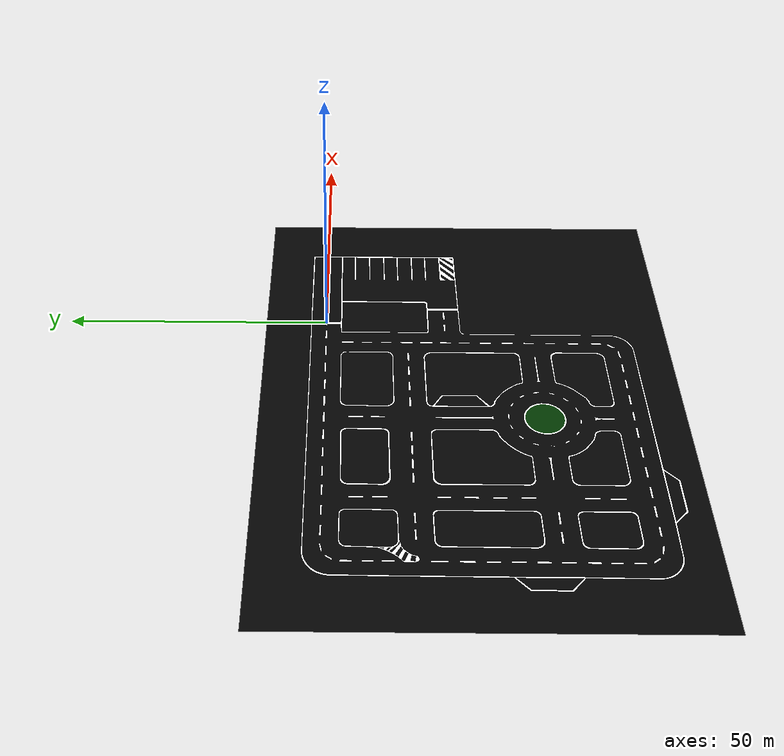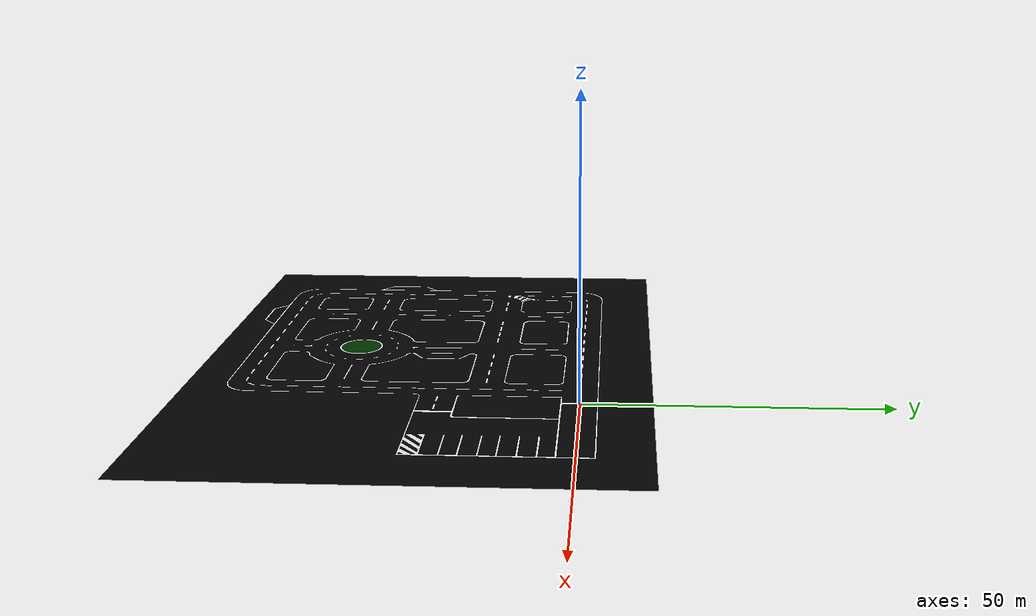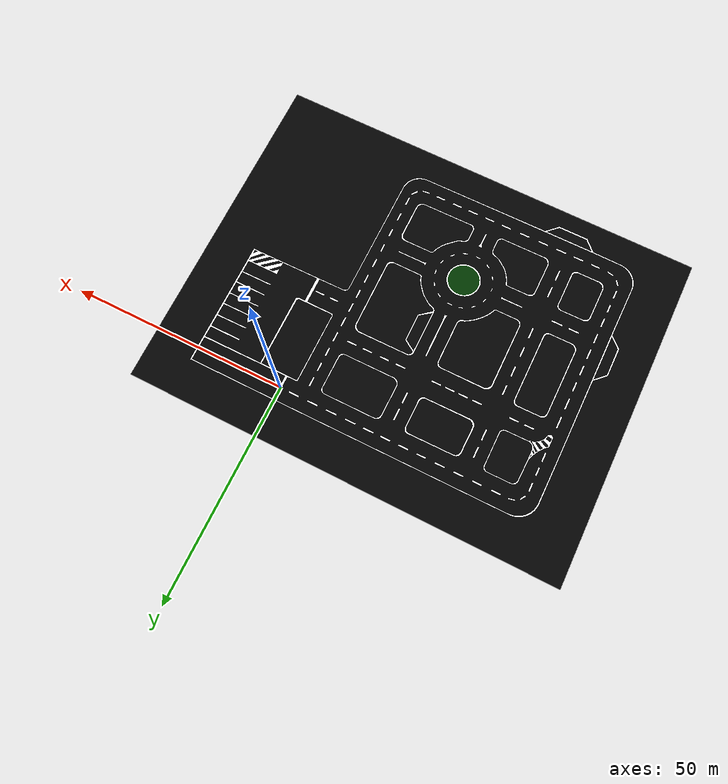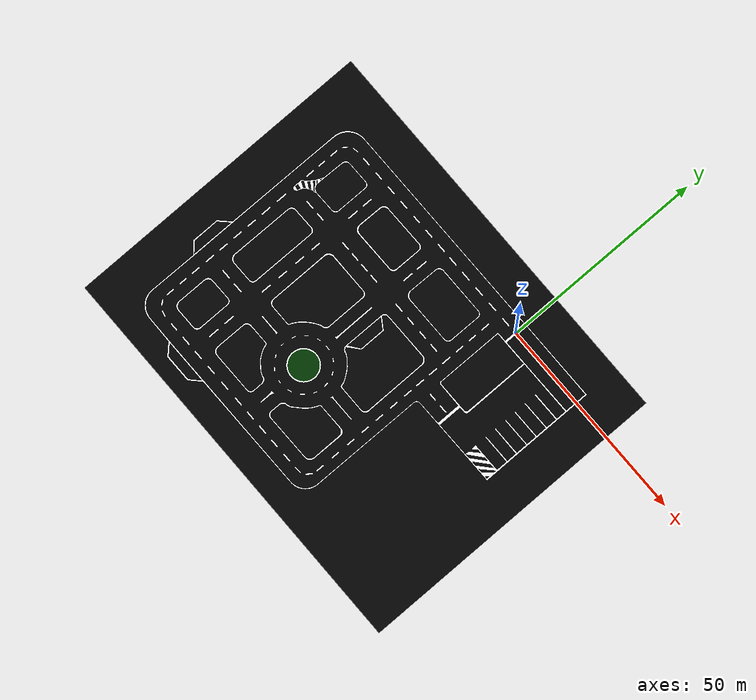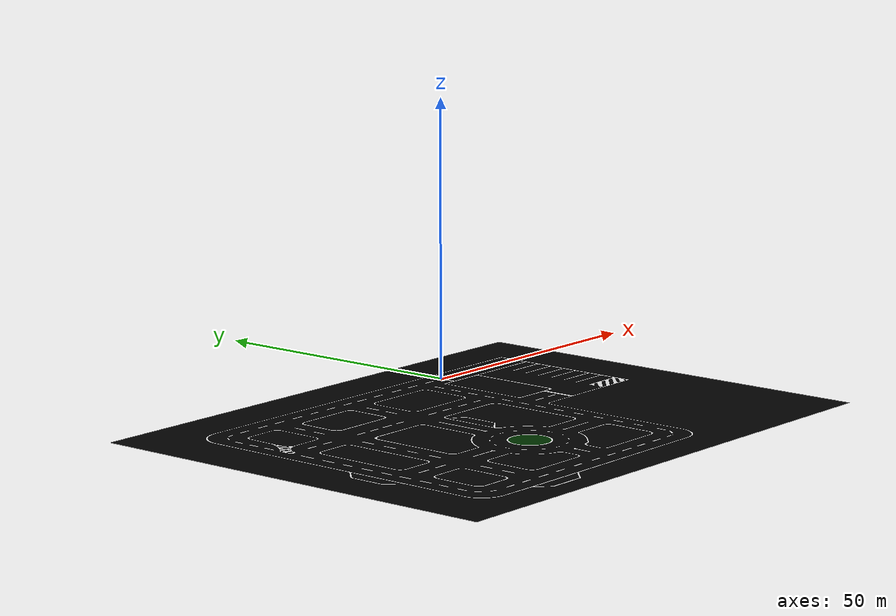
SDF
<?xml version="1.0" ?>
<sdf version="1.6">
  <model name="TeknofestHaritav2">
    <static>true</static>
    <link name="link">
      <collision name="collision">
        <geometry>
          <mesh>
            <uri>model://teknofestharitav2/meshes/teknofestharitav2.dae</uri>
          </mesh>
        </geometry>
      </collision>
      <visual name="visual">
        <geometry>
          <mesh>
            <uri>model://teknofestharitav2/meshes/teknofestharitav2.dae</uri>
          </mesh>
        </geometry>
      </visual>
    </link>
  </model>
</sdf>
